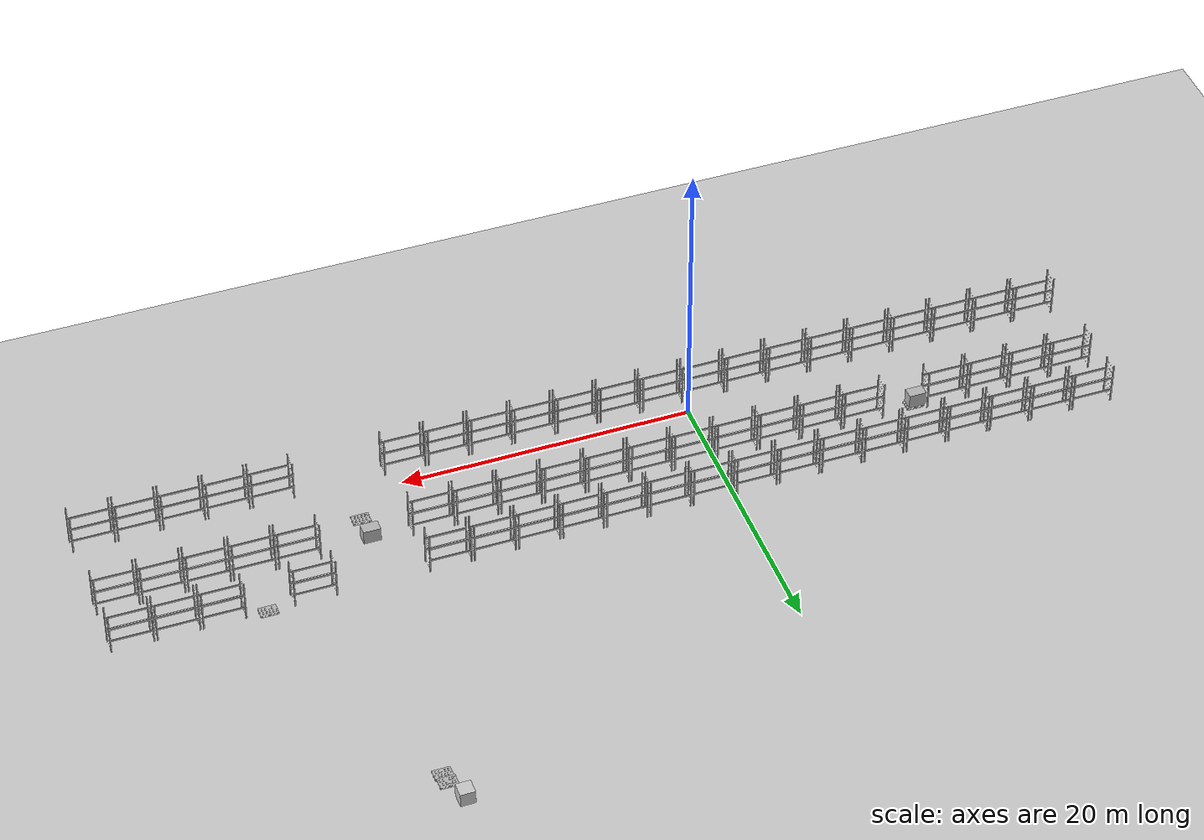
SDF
<sdf version="1.7">
 <world name="default">
  <include><uri>model://factory_floor</uri></include>
  <physics name="default_physics" default="0" type="ode">
   <real_time_factor>1</real_time_factor>
   <real_time_update_rate>1000</real_time_update_rate>
  </physics>
  <light type="directional" name="sun">
   <pose>0 0 10 0 0 0</pose>
   <diffuse>0.8 0.8 0.8 1</diffuse>
   <specular>0.2 0.2 0.2 1</specular>
   <attenuation>
    <range>1000</range>
    <constant>0.9</constant>
    <linear>0.01</linear>
    <quadratic>0.001</quadratic>
   </attenuation>
   <direction>0.1 0.1 -0.9</direction>
  </light>
  <include>
   <static>1</static>
   <uri>model://shelf</uri>
   <name>shelf_wall_1_2</name>
   <pose>-27 -2  0.001 0 0 0</pose>
  </include>
  <include>
   <static>1</static>
   <uri>model://shelf</uri>
   <name>shelf_wall_1_3</name>
   <pose>-24 -2  0.001 0 0 0</pose>
  </include>
  <include>
   <static>1</static>
   <uri>model://shelf</uri>
   <name>shelf_wall_1_4</name>
   <pose>-21 -2  0.001 0 0 0</pose>
  </include>
  <include>
   <static>1</static>
   <uri>model://shelf</uri>
   <name>shelf_wall_1_5</name>
   <pose>-18 -2  0.001 0 0 0</pose>
  </include>
  <include>
   <static>1</static>
   <uri>model://shelf</uri>
   <name>shelf_wall_1_6</name>
   <pose>-15 -2  0.001 0 0 0</pose>
  </include>
  <include>
   <static>1</static>
   <uri>model://shelf</uri>
   <name>shelf_wall_1_7</name>
   <pose>-12 -2  0.001 0 0 0</pose>
  </include>
  <include>
   <static>1</static>
   <uri>model://shelf</uri>
   <name>shelf_wall_1_8</name>
   <pose>-9 -2  0.001 0 0 0</pose>
  </include>
  <include>
   <static>1</static>
   <uri>model://shelf</uri>
   <name>shelf_wall_1_9</name>
   <pose>-6 -2  0.001 0 0 0</pose>
  </include>
  <include>
   <static>1</static>
   <uri>model://shelf</uri>
   <name>shelf_wall_1_10</name>
   <pose>-3 -2  0.001 0 0 0</pose>
  </include>
  <include>
   <static>1</static>
   <uri>model://shelf</uri>
   <name>shelf_wall_1_11</name>
   <pose>0 -2  0.001 0 0 0</pose>
  </include>
  <include>
   <static>1</static>
   <uri>model://shelf</uri>
   <name>shelf_wall_1_12</name>
   <pose>3 -2  0.001 0 0 0</pose>
  </include>
  <include>
   <static>1</static>
   <uri>model://shelf</uri>
   <name>shelf_wall_1_13</name>
   <pose>6 -2  0.001 0 0 0</pose>
  </include>
  <include>
   <static>1</static>
   <uri>model://shelf</uri>
   <name>shelf_wall_1_14</name>
   <pose>9 -2  0.001 0 0 0</pose>
  </include>
  <include>
   <static>1</static>
   <uri>model://shelf</uri>
   <name>shelf_wall_1_15</name>
   <pose>12 -2  0.001 0 0 0</pose>
  </include>
  <include>
   <static>1</static>
   <uri>model://shelf</uri>
   <name>shelf_wall_1_16</name>
   <pose>15 -2  0.001 0 0 0</pose>
  </include>
  <include>
   <static>1</static>
   <uri>model://shelf</uri>
   <name>shelf_wall_1_17</name>
   <pose>18 -2  0.001 0 0 0</pose>
  </include>
  <include>
   <static>1</static>
   <uri>model://shelf</uri>
   <name>shelf_wall_1_20</name>
   <pose>27 -2  0.001 0 0 0</pose>
  </include>
  <include>
   <static>1</static>
   <uri>model://shelf</uri>
   <name>shelf_wall_1_21</name>
   <pose>30 -2  0.001 0 0 0</pose>
  </include>
  <include>
   <static>1</static>
   <uri>model://shelf</uri>
   <name>shelf_wall_1_22</name>
   <pose>33 -2  0.001 0 0 0</pose>
  </include>
  <include>
   <static>1</static>
   <uri>model://shelf</uri>
   <name>shelf_wall_1_23</name>
   <pose>36 -2  0.001 0 0 0</pose>
  </include>
  <include>
   <static>1</static>
   <uri>model://shelf</uri>
   <name>shelf_wall_1_24</name>
   <pose>39 -2  0.001 0 0 0</pose>
  </include>
  <include>
   <static>1</static>
   <uri>model://shelf</uri>
   <name>shelf_wall_2_2</name>
   <pose>-27 4  0.001 0 0 0</pose>
  </include>
  <include>
   <static>1</static>
   <uri>model://shelf</uri>
   <name>shelf_wall_2_3</name>
   <pose>-24 4  0.001 0 0 0</pose>
  </include>
  <include>
   <static>1</static>
   <uri>model://shelf</uri>
   <name>shelf_wall_2_4</name>
   <pose>-21 4  0.001 0 0 0</pose>
  </include>
  <include>
   <static>1</static>
   <uri>model://shelf</uri>
   <name>shelf_wall_2_5</name>
   <pose>-18 4  0.001 0 0 0</pose>
  </include>
  <include>
   <static>1</static>
   <uri>model://shelf</uri>
   <name>shelf_wall_2_7</name>
   <pose>-12 4  0.001 0 0 0</pose>
  </include>
  <include>
   <static>1</static>
   <uri>model://shelf</uri>
   <name>shelf_wall_2_8</name>
   <pose>-9 4  0.001 0 0 0</pose>
  </include>
  <include>
   <static>1</static>
   <uri>model://shelf</uri>
   <name>shelf_wall_2_9</name>
   <pose>-6 4  0.001 0 0 0</pose>
  </include>
  <include>
   <static>1</static>
   <uri>model://shelf</uri>
   <name>shelf_wall_2_10</name>
   <pose>-3 4  0.001 0 0 0</pose>
  </include>
  <include>
   <static>1</static>
   <uri>model://shelf</uri>
   <name>shelf_wall_2_11</name>
   <pose>0 4  0.001 0 0 0</pose>
  </include>
  <include>
   <static>1</static>
   <uri>model://shelf</uri>
   <name>shelf_wall_2_12</name>
   <pose>3 4  0.001 0 0 0</pose>
  </include>
  <include>
   <static>1</static>
   <uri>model://shelf</uri>
   <name>shelf_wall_2_13</name>
   <pose>6 4  0.001 0 0 0</pose>
  </include>
  <include>
   <static>1</static>
   <uri>model://shelf</uri>
   <name>shelf_wall_2_14</name>
   <pose>9 4  0.001 0 0 0</pose>
  </include>
  <include>
   <static>1</static>
   <uri>model://shelf</uri>
   <name>shelf_wall_2_15</name>
   <pose>12 4  0.001 0 0 0</pose>
  </include>
  <include>
   <static>1</static>
   <uri>model://shelf</uri>
   <name>shelf_wall_2_16</name>
   <pose>15 4  0.001 0 0 0</pose>
  </include>
  <include>
   <static>1</static>
   <uri>model://shelf</uri>
   <name>shelf_wall_2_17</name>
   <pose>18 4  0.001 0 0 0</pose>
  </include>
  <include>
   <static>1</static>
   <uri>model://shelf</uri>
   <name>shelf_wall_2_20</name>
   <pose>27 4  0.001 0 0 0</pose>
  </include>
  <include>
   <static>1</static>
   <uri>model://shelf</uri>
   <name>shelf_wall_2_21</name>
   <pose>30 4  0.001 0 0 0</pose>
  </include>
  <include>
   <static>1</static>
   <uri>model://shelf</uri>
   <name>shelf_wall_2_22</name>
   <pose>33 4  0.001 0 0 0</pose>
  </include>
  <include>
   <static>1</static>
   <uri>model://shelf</uri>
   <name>shelf_wall_2_23</name>
   <pose>36 4  0.001 0 0 0</pose>
  </include>
  <include>
   <static>1</static>
   <uri>model://shelf</uri>
   <name>shelf_wall_2_24</name>
   <pose>39 4  0.001 0 0 0</pose>
  </include>
  <include>
   <static>1</static>
   <uri>model://shelf</uri>
   <name>shelf_wall_3_2</name>
   <pose>-27 7.5  0.001 0 0 0</pose>
  </include>
  <include>
   <static>1</static>
   <uri>model://shelf</uri>
   <name>shelf_wall_3_3</name>
   <pose>-24 7.5  0.001 0 0 0</pose>
  </include>
  <include>
   <static>1</static>
   <uri>model://shelf</uri>
   <name>shelf_wall_3_4</name>
   <pose>-21 7.5  0.001 0 0 0</pose>
  </include>
  <include>
   <static>1</static>
   <uri>model://shelf</uri>
   <name>shelf_wall_3_5</name>
   <pose>-18 7.5  0.001 0 0 0</pose>
  </include>
  <include>
   <static>1</static>
   <uri>model://shelf</uri>
   <name>shelf_wall_3_6</name>
   <pose>-15 7.5  0.001 0 0 0</pose>
  </include>
  <include>
   <static>1</static>
   <uri>model://shelf</uri>
   <name>shelf_wall_3_7</name>
   <pose>-12 7.5  0.001 0 0 0</pose>
  </include>
  <include>
   <static>1</static>
   <uri>model://shelf</uri>
   <name>shelf_wall_3_8</name>
   <pose>-9 7.5  0.001 0 0 0</pose>
  </include>
  <include>
   <static>1</static>
   <uri>model://shelf</uri>
   <name>shelf_wall_3_9</name>
   <pose>-6 7.5  0.001 0 0 0</pose>
  </include>
  <include>
   <static>1</static>
   <uri>model://shelf</uri>
   <name>shelf_wall_3_10</name>
   <pose>-3 7.5  0.001 0 0 0</pose>
  </include>
  <include>
   <static>1</static>
   <uri>model://shelf</uri>
   <name>shelf_wall_3_11</name>
   <pose>0 7.5  0.001 0 0 0</pose>
  </include>
  <include>
   <static>1</static>
   <uri>model://shelf</uri>
   <name>shelf_wall_3_12</name>
   <pose>3 7.5  0.001 0 0 0</pose>
  </include>
  <include>
   <static>1</static>
   <uri>model://shelf</uri>
   <name>shelf_wall_3_13</name>
   <pose>6 7.5  0.001 0 0 0</pose>
  </include>
  <include>
   <static>1</static>
   <uri>model://shelf</uri>
   <name>shelf_wall_3_14</name>
   <pose>9 7.5  0.001 0 0 0</pose>
  </include>
  <include>
   <static>1</static>
   <uri>model://shelf</uri>
   <name>shelf_wall_3_15</name>
   <pose>12 7.5  0.001 0 0 0</pose>
  </include>
  <include>
   <static>1</static>
   <uri>model://shelf</uri>
   <name>shelf_wall_3_16</name>
   <pose>15 7.5  0.001 0 0 0</pose>
  </include>
  <include>
   <static>1</static>
   <uri>model://shelf</uri>
   <name>shelf_wall_3_17</name>
   <pose>18 7.5  0.001 0 0 0</pose>
  </include>
  <include>
   <static>1</static>
   <uri>model://shelf</uri>
   <name>shelf_wall_3_20</name>
   <pose>27 7.5  0.001 0 0 0</pose>
  </include>
  <include>
   <static>1</static>
   <uri>model://shelf</uri>
   <name>shelf_wall_3_22</name>
   <pose>33 7.5  0.001 0 0 0</pose>
  </include>
  <include>
   <static>1</static>
   <uri>model://shelf</uri>
   <name>shelf_wall_3_23</name>
   <pose>36 7.5  0.001 0 0 0</pose>
  </include>
  <include>
   <static>1</static>
   <uri>model://shelf</uri>
   <name>shelf_wall_3_24</name>
   <pose>39 7.5  0.001 0 0 0</pose>
  </include>
  <include><uri>model://eur_pallet</uri><name>pallet_group_pickup</name><pose>-15 4 0.001 0 0 0</pose></include>
  <include>
   <uri>model://box_1185x785x1010</uri>
   <name>box_group_pickup</name>
   <pose>-15  5 0.4 0 0 0</pose>
  </include>
  <include>
   <uri>model://eur_pallet</uri>
   <name>pallet_group_dropoff</name>
   <pose>31 8 0.001 0 -0 0</pose>
  </include>
  <include><uri>model://eur_pallet</uri><name>pallet__obsticle</name><pose>23 2 0.001 0 0 0</pose></include>
  <include><uri>model://box_1185x785x1010</uri><name>box_obsticle</name><pose>23  5 0.4 0 0 0</pose></include>
  <include><uri>model://eur_pallet</uri><name>eur_pallet</name><pose>25 25 0.1 0 0 0</pose></include>
  <include>
   <uri>model://eur_pallet</uri>
   <name>smaller_pallet</name>
   <mesh scale="0.5 0.5 0.5">model://eur_pallet</mesh>
   <pose>25  26 0.4 0 0 0</pose>
  </include>
  <include><uri>model://traffic_cone</uri><name>traffic_cone</name><pose>25 28 0.4 0 0 0</pose></include>
  <plugin name="gazebo_ros_state" filename="libgazebo_ros_state.so">
   <ros><namespace>/gazebo</namespace></ros>
   <update_rate>1.0</update_rate>
  </plugin>
 </world>
</sdf>

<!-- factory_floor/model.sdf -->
<sdf version="1.4">
<model name="factory_floor">
  <static>true</static>
    <link name="link">
      <collision name="collision">
        <geometry>
          <plane>
            <normal>0 0 1</normal>
            <size>100 100</size>
          </plane>
        </geometry>
        <surface>
          <friction>
            <ode>
              <mu>100</mu>
              <mu2>50</mu2>
            </ode>
          </friction>
        </surface>
      </collision>
      <visual name="visual">
        <cast_shadows>false</cast_shadows>
        <geometry>
          <plane>
            <normal>0 0 1</normal>
            <size>100 100</size>
          </plane>
        </geometry>
        <material>
          <script>
            <uri>model://factory_floor/materials/scripts</uri>
            <uri>model://factory_floor/materials/textures</uri>
            <name>FactoryFloorMaterial</name>
          </script>
        </material>
      </visual>
    </link>
  </model>
</sdf>

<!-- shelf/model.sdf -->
<sdf version="1.9">
  <model name="shelf" canonical_link="node0_link">

    <link name="node0_link">
      <inertial>
        <inertia>
          <ixx>24.93052</ixx>
          <ixy>0</ixy>
          <ixz>0</ixz>
          <iyy>54.42990</iyy>
          <iyz>0</iyz>
          <izz>42.61899</izz>
        </inertia>
        <pose>1.44044 0.43986 1.49318 0 0 0</pose>
        <mass>40.00000</mass>
      </inertial>

      <visual name="node0">
        <pose>0 0 0 0 0 0</pose>
        <geometry>
          <mesh>
            <uri>model://shelf/meshes/textured_shelf_low_poly.dae</uri>
            <scale>1.00000 1.00000 1.00000</scale>
          </mesh>
        </geometry>
      </visual>
    </link>

    <plugin filename="gz-sim-label-system" name="gz::sim::systems::Label">
      <label>10</label>
    </plugin>

    <link name="collision_shelf_1">
      <inertial>
        <mass>0.0001</mass>
        <inertia>
          <ixx>1e-6</ixx>
          <iyy>1e-6</iyy>
          <izz>1e-6</izz>
          <ixy>0</ixy>
          <ixz>0</ixz>
          <iyz>0</iyz>
        </inertia>
      </inertial>
      <collision name="collision_shelf_1">
        <pose>1.45 0.45 0 0 0 0</pose>
        <geometry>
          <box>
            <size>2.7 1.2 0.13</size>
          </box>
        </geometry>
        <surface>
          <friction>
            <ode>
              <mu>1</mu>
              <mu2>1</mu2>
              <slip1>0</slip1>
              <slip2>0</slip2>
            </ode>
          </friction>
          <contact>
            <ode>
              <soft_cfm>0</soft_cfm>
              <soft_erp>0.2</soft_erp>
              <kp>1e+13</kp>
              <kd>1</kd>
              <max_vel>0.01</max_vel>
              <min_depth>0</min_depth>
            </ode>
          </contact>
        </surface>
      </collision>
    </link>

    <link name="collision_shelf_2">
      <inertial>
        <mass>0.0001</mass>
        <inertia>
          <ixx>1e-6</ixx>
          <iyy>1e-6</iyy>
          <izz>1e-6</izz>
          <ixy>0</ixy>
          <ixz>0</ixz>
          <iyz>0</iyz>
        </inertia>
      </inertial>
      <collision name="collision_shelf_2">
        <pose>1.45 0.45 1 0 0 0</pose>
        <geometry>
          <box>
            <size>2.7 1.2 0.13</size>
          </box>
        </geometry>
        <surface>
          <friction>
            <ode>
              <mu>1</mu>
              <mu2>1</mu2>
              <slip1>0</slip1>
              <slip2>0</slip2>
            </ode>
          </friction>
          <contact>
            <ode>
              <soft_cfm>0</soft_cfm>
              <soft_erp>0.2</soft_erp>
              <kp>1e+13</kp>
              <kd>1</kd>
              <max_vel>0.01</max_vel>
              <min_depth>0</min_depth>
            </ode>
          </contact>
        </surface>
      </collision>
    </link>

    <link name="collision_shelf_3">
      <inertial>
        <mass>0.0001</mass>
        <inertia>
          <ixx>1e-6</ixx>
          <iyy>1e-6</iyy>
          <izz>1e-6</izz>
          <ixy>0</ixy>
          <ixz>0</ixz>
          <iyz>0</iyz>
        </inertia>
      </inertial>
      <collision name="collision_shelf_3">
        <pose>1.45 0.45 2 0 0 0</pose>
        <geometry>
          <box>
            <size>2.7 1.2 0.13</size>
          </box>
        </geometry>
        <surface>
          <friction>
            <ode>
              <mu>1</mu>
              <mu2>1</mu2>
              <slip1>0</slip1>
              <slip2>0</slip2>
            </ode>
          </friction>
          <contact>
            <ode>
              <soft_cfm>0</soft_cfm>
              <soft_erp>0.2</soft_erp>
              <kp>1e+13</kp>
              <kd>1</kd>
              <max_vel>0.01</max_vel>
              <min_depth>0</min_depth>
            </ode>
          </contact>
        </surface>
      </collision>
    </link>

    <joint name="fixed_joint_1" type="fixed">
      <parent>node0_link</parent>
      <child>collision_shelf_1</child>
    </joint>

    <joint name="fixed_joint_2" type="fixed">
      <parent>node0_link</parent>
      <child>collision_shelf_2</child>
    </joint>

    <joint name="fixed_joint_3" type="fixed">
      <parent>node0_link</parent>
      <child>collision_shelf_3</child>
    </joint>

  </model>
</sdf>

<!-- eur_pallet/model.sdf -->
<sdf version="1.9">
<model name="eur_pallet" canonical_link="node0_link">
  <link name="node0_link">
    <visual name="node0">
      <pose>0 0 0 0 0 0</pose>
      <geometry>
        <mesh>
          <uri>model://eur_pallet/meshes/textured_pallet.dae</uri>
          <scale>1.00000 1.00000 1.00000</scale>
        </mesh>
      </geometry>
    </visual>
  </link>

  <link name="collision_holder_1">
    <inertial>
      <inertia>
        <ixx>0.006</ixx>
        <ixy>0</ixy>
        <ixz>0</ixz>
        <iyy>0.435</iyy>
        <iyz>0</iyz>
        <izz>0.435</izz>
      </inertia>
      <pose>0.6 0.05 0.05 0 0 0</pose>
      <mass>3.6</mass>
    </inertial>
    <collision name="collision_holder_1">
      <pose>0.6 0.05 0.05 0.0 0.0 0.0</pose>
      <geometry>
        <box>
          <size>1.2 0.1 0.1</size>
        </box>
      </geometry>
      <surface>
      <friction>
        <ode>
          <mu>1</mu>
          <mu2>1</mu2>
          <slip1>0</slip1>
          <slip2>0</slip2>
        </ode>
      </friction>
      <contact>
        <ode>
          <soft_cfm>1e-5</soft_cfm>
          <soft_erp>0.2</soft_erp>
          <kp>1e+13</kp>
          <kd>1</kd>
          <max_vel>0.01</max_vel>
          <min_depth>0</min_depth>
        </ode>
      </contact>
      </surface>
    </collision>
  </link>

  <link name="collision_holder_2">
    <inertial>
      <inertia>
        <ixx>0.013496</ixx>
        <ixy>0</ixy>
        <ixz>0</ixz>
        <iyy>0.6308</iyy>
        <iyz>0</iyz>
        <izz>0.6355</izz>
      </inertia>
      <pose>0.6 0.4 0.05 0 0 0</pose>
      <mass>5.22</mass>
    </inertial>
    <collision name="collision_holder_2">
      <pose>0.6 0.4 0.05 0 0 0</pose>
      <geometry>
        <box>
          <size>1.2 0.145 0.1</size>
        </box>
      </geometry>
      <surface>
      <friction>
        <ode>
          <mu>1</mu>
          <mu2>1</mu2>
          <slip1>0</slip1>
          <slip2>0</slip2>
        </ode>
      </friction>
      <contact>
        <ode>
          <soft_cfm>1e-5</soft_cfm>
          <soft_erp>0.2</soft_erp>
          <kp>1e+13</kp>
          <kd>1</kd>
          <max_vel>0.01</max_vel>
          <min_depth>0</min_depth>
        </ode>
      </contact>
      </surface>

    </collision>
  </link>

  <link name="collision_holder_3">
    <inertial>
      <inertia>
        <ixx>0.006</ixx>
        <ixy>0</ixy>
        <ixz>0</ixz>
        <iyy>0.435</iyy>
        <iyz>0</iyz>
        <izz>0.435</izz>
      </inertia>
      <pose>0.6 0.75 0.05 0 0 0</pose>
      <mass>3.6</mass>
    </inertial>
    <collision name="collision_holder_3">
      <pose>0.6 0.75 0.05 0 0 0</pose>
      <geometry>
        <box>
          <size>1.2 0.1 0.1</size>
        </box>
      </geometry>
      <surface>
      <friction>
        <ode>
          <mu>1</mu>
          <mu2>1</mu2>
          <slip1>0</slip1>
          <slip2>0</slip2>
        </ode>
      </friction>
      <contact>
        <ode>
          <soft_cfm>1e-5</soft_cfm>
          <soft_erp>0.2</soft_erp>
          <kp>1e+13</kp>
          <kd>1</kd>
          <max_vel>0.01</max_vel>
          <min_depth>0</min_depth>
        </ode>
      </contact>
      </surface>

    </collision>
  </link>

  <link name="collision_holder_surface">
    <inertial>
      <inertia>
        <ixx>0.6779</ixx>
        <ixy>0</ixy>
        <ixz>0</ixz>
        <iyy>1.5227</iyy>
        <iyz>0</iyz>
        <izz>2.1965</izz>
      </inertia>
      <pose>0.6 0.4 0.122 0 0 0</pose>
      <mass>12.672</mass>
    </inertial>
    <collision name="collision_holder_surface">
      <pose>0.6 0.4 0.122 0 0 0</pose>
      <geometry>
        <box>
          <size>1.2 0.8 0.044</size>
        </box>
      </geometry>
      <surface>
      <friction>
        <ode>
          <mu>1</mu>
          <mu2>1</mu2>
          <slip1>0</slip1>
          <slip2>0</slip2>
        </ode>
      </friction>
      <contact>
        <ode>
          <soft_cfm>1e-5</soft_cfm>
          <soft_erp>0.2</soft_erp>
          <kp>1e+13</kp>
          <kd>1</kd>
          <max_vel>0.01</max_vel>
          <min_depth>0</min_depth>
        </ode>
      </contact>
      </surface>

    </collision>
  </link>

  <joint name="fixed_joint_2" type="fixed">
    <parent>node0_link</parent>
    <child>collision_holder_2</child>
  </joint>

  <joint name="fixed_joint_3" type="fixed">
    <parent>node0_link</parent>
    <child>collision_holder_3</child>
  </joint>

  <joint name="fixed_joint_1" type="fixed">
    <parent>node0_link</parent>
    <child>collision_holder_1</child>
  </joint>

  <joint name="fixed_joint_surface" type="fixed">
    <parent>node0_link</parent>
    <child>collision_holder_surface</child>
  </joint>

  <plugin filename="gz-sim-label-system" name="gz::sim::systems::Label">
    <label>3</label>
  </plugin>

</model>
</sdf>

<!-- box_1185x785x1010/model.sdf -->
<sdf version="1.9">
<model name="box_1185x785x1010" canonical_link="node0_link">
  <link name="node0_link">
    <collision name="node0_collision">
      <pose>0.59250 -0.39250 0.50500 0 0 0</pose>
      <geometry>
        <box>
          <size>1.185 0.785 1.01</size>
        </box>
      </geometry>

      <surface>
      <friction>
        <ode>
          <mu>1</mu>
          <mu2>1</mu2>
          <slip1>0</slip1>
          <slip2>0</slip2>
        </ode>
      </friction>
      <contact>
        <ode>
          <soft_cfm>0</soft_cfm>
          <soft_erp>0.2</soft_erp>
          <kp>1e+13</kp>
          <kd>1</kd>
          <max_vel>0.01</max_vel>
          <min_depth>0</min_depth>
        </ode>
      </contact>
      </surface>

    </collision>
    <inertial>
      <inertia>
        <ixx>8.508996</ixx>
        <ixy>-0</ixy>
        <ixz>-0</ixz>
        <iyy>12.70658</iyy>
        <iyz>-0</iyz>
        <izz>10.59254</izz>
      </inertia>
      <pose>0.59250 -0.39250 0.50500 0 0 0</pose>
      <mass>50.0</mass>
    </inertial>
    <visual name="node0">
      <pose>0 0 0 0 0 0</pose>
      <geometry>
        <mesh>
          <uri>model://box_1185x785x1010/meshes/textured_1185x785x1010_low_poly.dae</uri>
          <scale>1.00000 1.00000 1.00000</scale>
        </mesh>
      </geometry>
    </visual>
  </link>
  <plugin filename="gz-sim-label-system" name="gz::sim::systems::Label">
    <label>4</label>
  </plugin>
</model>
</sdf>

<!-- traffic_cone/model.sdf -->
<sdf version="1.7">
<model name="traffic_cone" canonical_link="node0_link">
  <link name="node0_link">
    <collision name="node0_collision">
      <pose relative_to="node0_link">0.00000 0.00000 0.00000 0.00000 0.00000 0.00000</pose>
      <geometry>
        <mesh>
          <uri>meshes/Body.dae</uri>
          <scale>1.00000 1.00000 1.00000</scale>
        </mesh>
      </geometry>
      <surface>
        <contact><ode>  <max_vel>0.001</max_vel><min_depth>0.01</min_depth><kd>1e15</kd>  </ode></contact>
      </surface>
    </collision>
    <inertial>
      <inertia>
        <ixx>1.94536</ixx>
        <ixy>0.00000</ixy>
        <ixz>0.00544</ixz>
        <iyy>1.94538</iyy>
        <iyz>0.00000</iyz>
        <izz>0.25007</izz>
      </inertia>
      <pose relative_to="node0_link">0.26000 -0.26000 0.30336 0.00000 0.00000 0.00000</pose>
      <mass>10.00000</mass>
    </inertial>
    <visual name="node0">
      <material>
        <diffuse>0.80000 0.80000 0.80000 1.00000</diffuse>
        <specular>0.40000 0.40000 0.40000 0.49804</specular>
        <emissive>0.00000 0.00000 0.00000 1.00000</emissive>
      </material>
      <pose relative_to="node0_link">0.00000 0.00000 0.00000 0.00000 0.00000 0.00000</pose>
      <geometry>
        <mesh>
          <uri>meshes/Body.dae</uri>
          <scale>1.00000 1.00000 1.00000</scale>
        </mesh>
      </geometry>
    </visual>
  </link>
</model>
</sdf>
